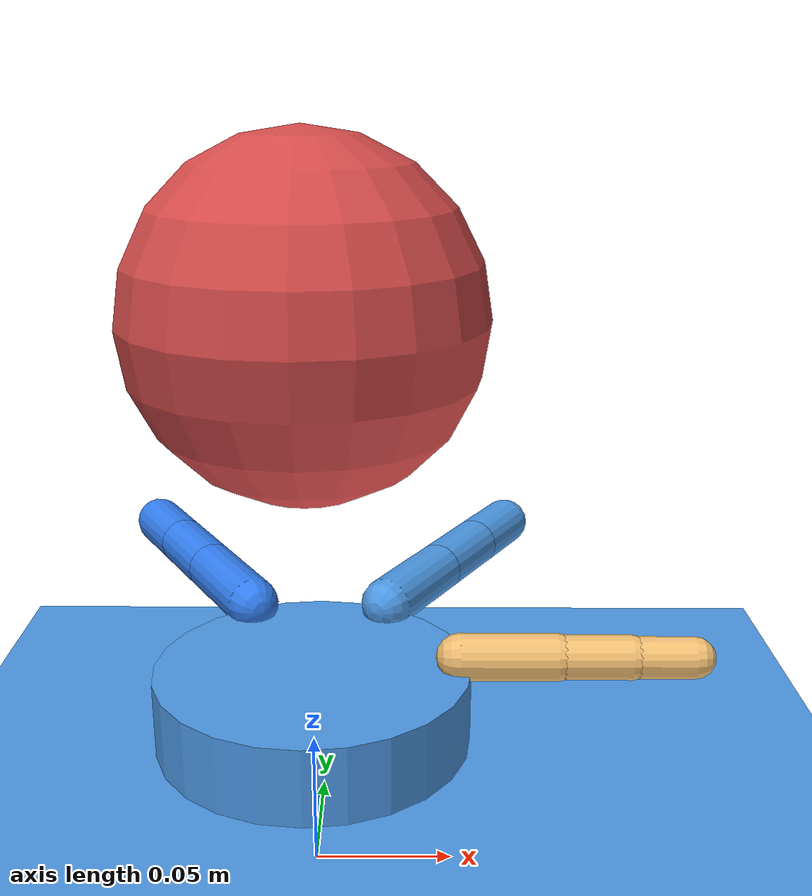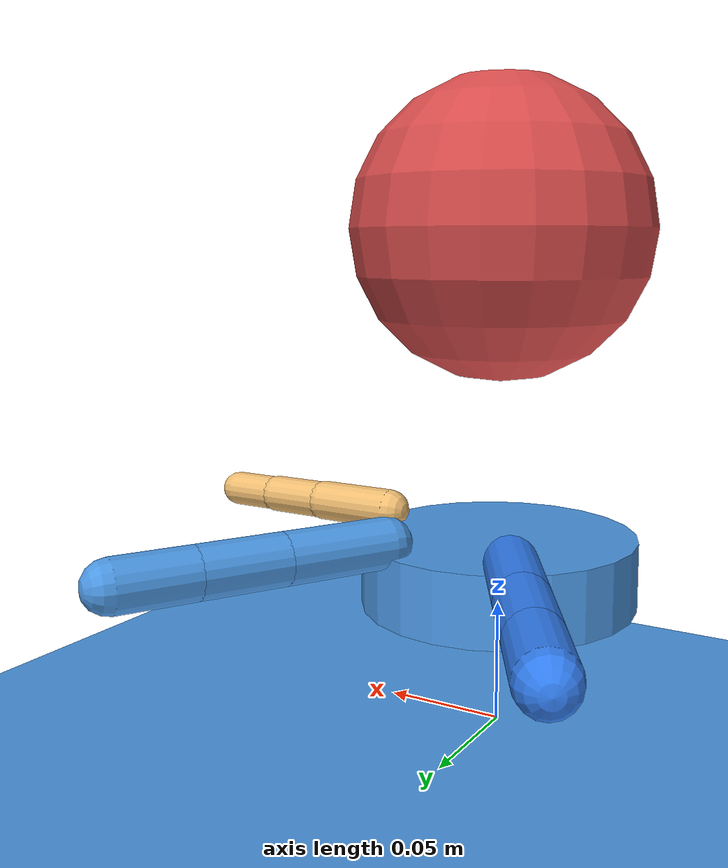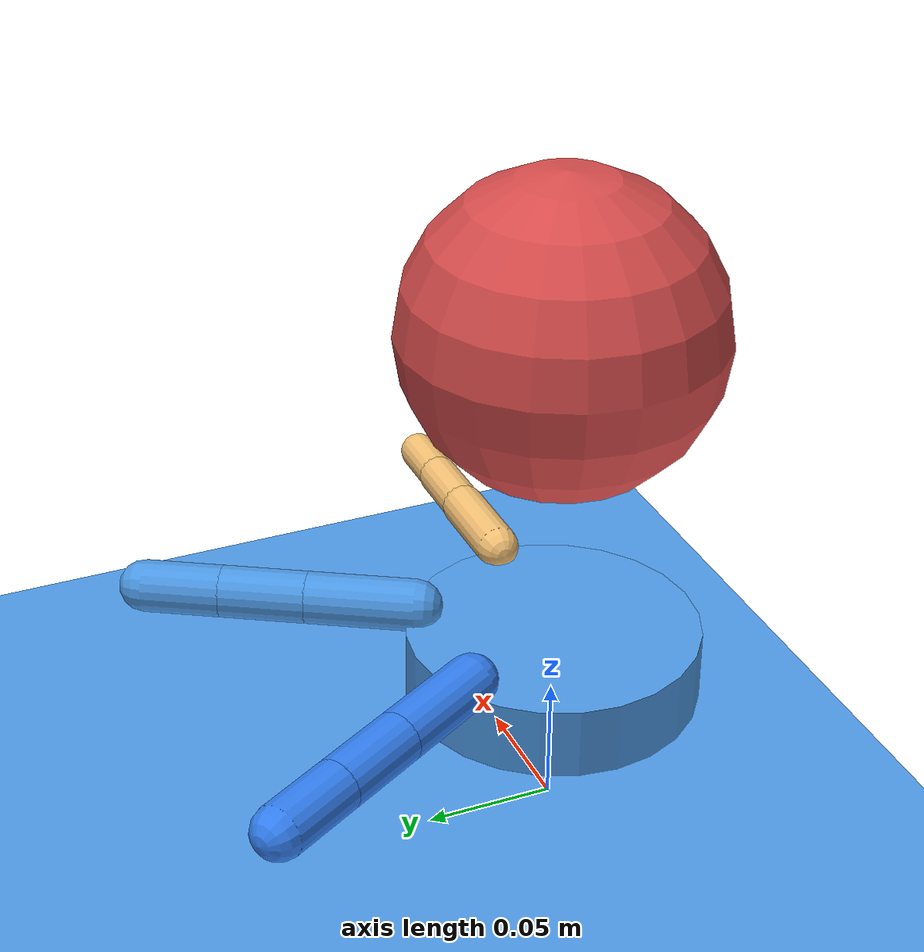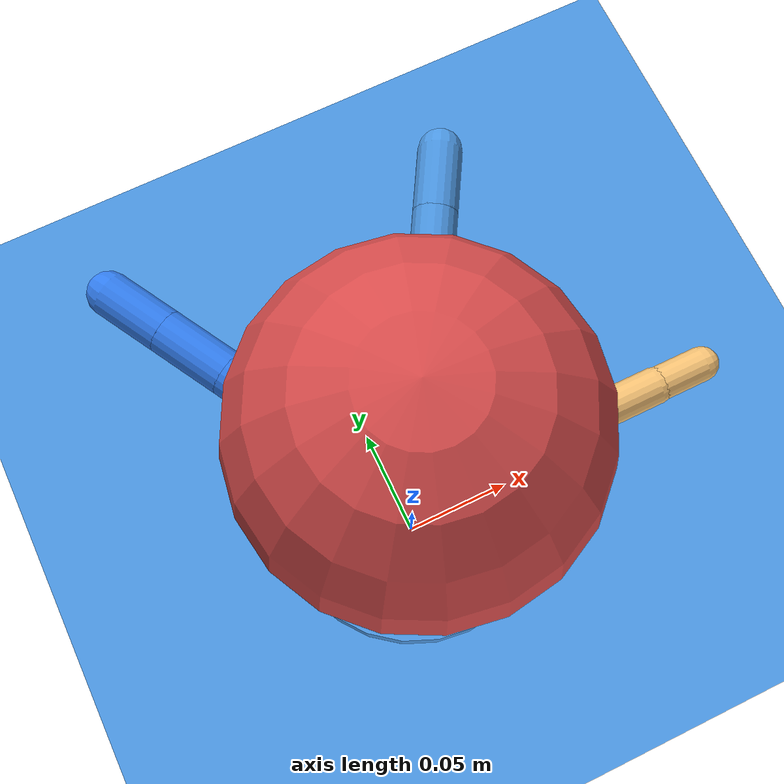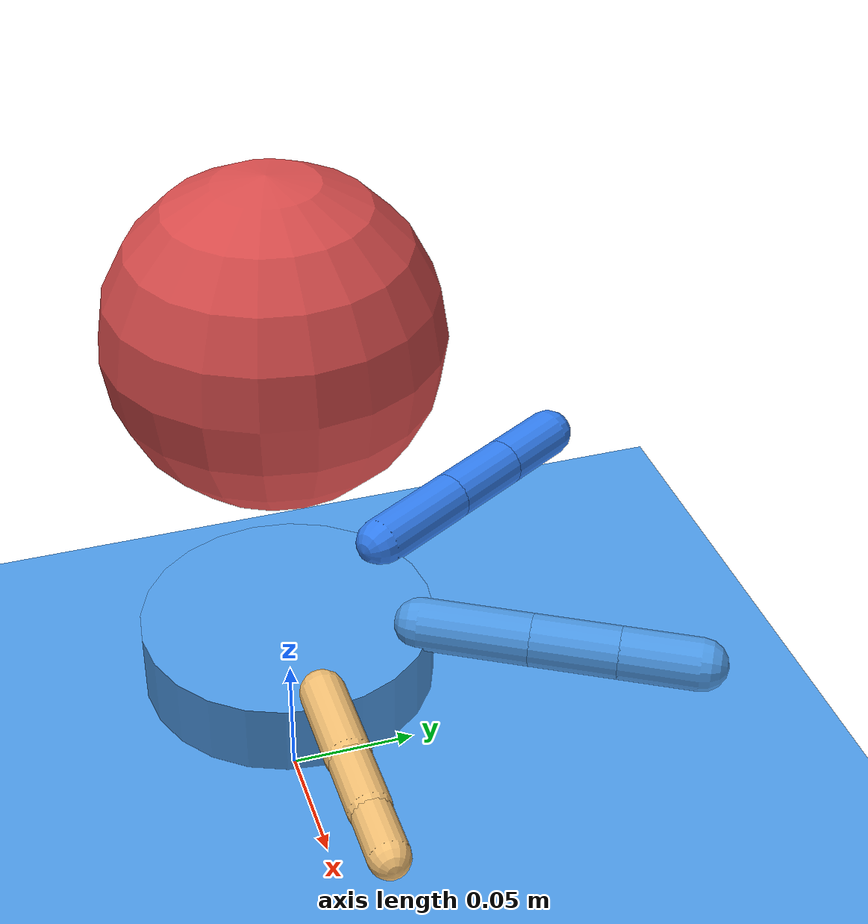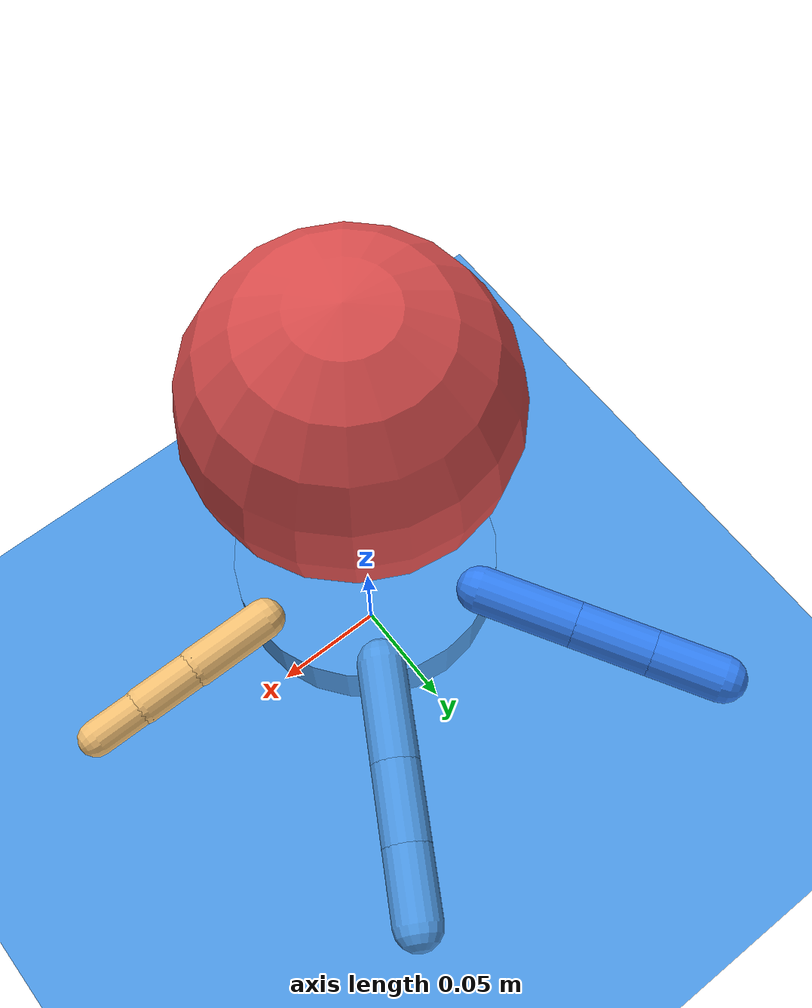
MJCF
<mujoco model="underactuated_soft_3finger_hand">
  <compiler angle="radian" autolimits="true"/>
  <option timestep="0.002" gravity="0 0 -9.81" integrator="implicitfast" iterations="80"/>

  <visual>
    <headlight ambient="0.5 0.5 0.5" diffuse="0.6 0.6 0.6" specular="0.1 0.1 0.1"/>
  </visual>

  <default>
    <joint type="hinge" damping="0.12" armature="0.0002"
           stiffness="0.8" limited="true"/>
    <geom type="capsule" size="0.010" density="350" friction="1.2 0.02 0.002"
          contype="1" conaffinity="1" rgba="0.3 0.6 0.9 1"/>
    <!-- Pure planar underactuated hand:
         each finger has three parallel bending DOFs. -->
    <default class="finger_base_joint">
      <joint axis="0 -1 0" range="0 3.14"/>
    </default>
    <default class="finger_proximal_joint">
      <joint axis="0 -1 0" range="0 3.14"/>
    </default>
    <default class="finger_distal_joint">
      <joint axis="0 -1 0" range="0 3.14 "/>
    </default>
    <default class="thumb_base_joint">
      <joint axis="0 -1 0" range="0 3.14 "/>
    </default>
    <default class="thumb_proximal_joint">
      <joint axis="0 -1 0" range="0 3.14 "/>
    </default>
    <default class="thumb_distal_joint">
      <joint axis="0 -1 0" range="0 3.14 "/>
    </default>
  </default>

  <asset>
    <texture type="skybox" builtin="gradient" rgb1="1 1 1" rgb2="0.7 0.8 0.9" width="256" height="256"/>
    <texture name="grid" type="2d" builtin="checker" width="512" height="512"
             rgb1="0.86 0.86 0.86" rgb2="0.72 0.72 0.72"/>
    <material name="palm_mat" rgba="0.2 0.2 0.2 1"/>
    <material name="obj_mat" rgba="0.85 0.3 0.3 1"/>
    <material name="grid_mat" texture="grid" texrepeat="8 8" texuniform="true"
              reflectance="0.15"/>
  </asset>

  <worldbody>
    <light pos="0 0 1.5" dir="0 0 -1"/>
    <geom name="floor" type="plane" size="1 1 0.1" pos="0 0 0" material="grid_mat"/>

    <body name="palm" pos="0 0 0.065">
      <geom name="palm_main" type="cylinder" size="0.056 0.014" pos="0 0 0" material="palm_mat"/>
      <!-- thumb -->
      <body name="thumb_base" pos="0.052 0.000 0.018" euler="0 0 3.1415926536">
        <joint name="thumb_j1" class="thumb_base_joint"/>
        <geom size="0.0085" fromto="0 0 0 -0.034 0 0" rgba="0.95 0.75 0.45 1"/>
        <body name="thumb_link2" pos="-0.034 0 0" euler="0 0 0">
          <joint name="thumb_j2" class="thumb_proximal_joint"/>
          <geom size="0.0080" fromto="0 0 0 -0.026 0 0" rgba="0.95 0.75 0.45 1"/>
          <body name="thumb_link3" pos="-0.026 0 0" euler="0 0 0">
            <joint name="thumb_j3" class="thumb_distal_joint"/>
            <geom size="0.0075" fromto="0 0 0 -0.022 0 0" rgba="0.95 0.75 0.45 1"/>
            <site name="thumb_tip" pos="-0.022 0 0" size="0.006" rgba="1 0.6 0 1"/>
          </body>
        </body>
      </body>

      <!-- index finger -->
      <body name="index_base" pos="0.026 0.045 0.018" euler="0 0 -2.0943951024">
        <joint name="index_j1" class="finger_base_joint"/>
        <geom fromto="0 0 0 -0.042 0 0" rgba="0.3 0.6 0.9 1"/>
        <body name="index_link2" pos="-0.042 0 0" euler="0 0 0">
          <joint name="index_j2" class="finger_proximal_joint"/>
          <geom fromto="0 0 0 -0.033 0 0" rgba="0.3 0.6 0.9 1"/>
          <body name="index_link3" pos="-0.033 0 0" euler="0 0 0">
            <joint name="index_j3" class="finger_distal_joint"/>
            <geom fromto="0 0 0 -0.030 0 0" rgba="0.3 0.6 0.9 1"/>
            <site name="index_tip" pos="-0.030 0 0" size="0.006" rgba="0 1 0 1"/>
          </body>
        </body>
      </body>

      <!-- middle finger -->
      <body name="middle_base" pos="-0.026 0.045 0.018" euler="0 0 -1.0471975512">
        <joint name="middle_j1" class="finger_base_joint"/>
        <geom fromto="0 0 0 -0.042 0 0" rgba="0.2 0.5 0.95 1"/>
        <body name="middle_link2" pos="-0.042 0 0" euler="0 0 0">
          <joint name="middle_j2" class="finger_proximal_joint"/>
          <geom fromto="0 0 0 -0.033 0 0" rgba="0.2 0.5 0.95 1"/>
          <body name="middle_link3" pos="-0.033 0 0" euler="0 0 0">
            <joint name="middle_j3" class="finger_distal_joint"/>
            <geom fromto="0 0 0 -0.030 0 0" rgba="0.2 0.5 0.95 1"/>
            <site name="middle_tip" pos="-0.030 0 0" size="0.006" rgba="0 0.5 1 1"/>
          </body>
        </body>
      </body>
    </body>

    <!-- movable ball in the palm -->
    <body name="target_ball" pos="0 0 0.202">
      <freejoint/>
      <geom type="sphere" size="0.06" density="180" friction="1.0 0.02 0.002"
            rgba="0.85 0.3 0.3 1" material="obj_mat"/>
    </body>
  </worldbody>

  <tendon>
    <fixed name="grasp_tendon" limited="true" range="0 5.0" stiffness="0.1" damping="0.02">
      <joint joint="thumb_j1" coef="-1"/>
      <joint joint="thumb_j2" coef="-0.70"/>
      <joint joint="thumb_j3" coef="-0.50"/>

      <joint joint="index_j1" coef="-1.00"/>
      <joint joint="index_j2" coef="-0.80"/>
      <joint joint="index_j3" coef="-0.60"/>

      <joint joint="middle_j1" coef="-1.00"/>
      <joint joint="middle_j2" coef="-0.85"/>
      <joint joint="middle_j3" coef="-0.65"/>
    </fixed>
  </tendon>

  <actuator>
    <position name="close_hand" tendon="grasp_tendon"
              ctrlrange="0 3.8" kp="25" kv="6"/>
  </actuator>

  <sensor>
    <tendonpos name="grasp_length" tendon="grasp_tendon"/>
    <actuatorfrc name="close_force" actuator="close_hand"/>
  </sensor>
</mujoco>
